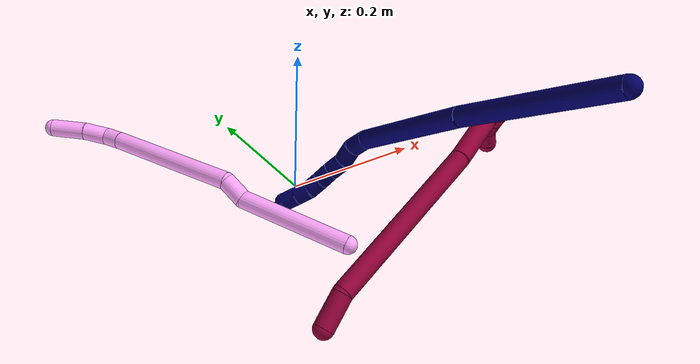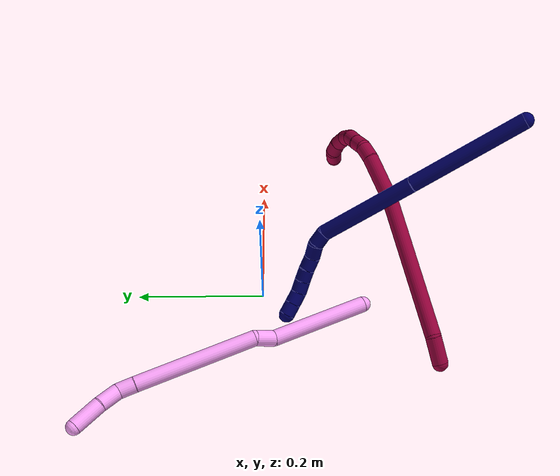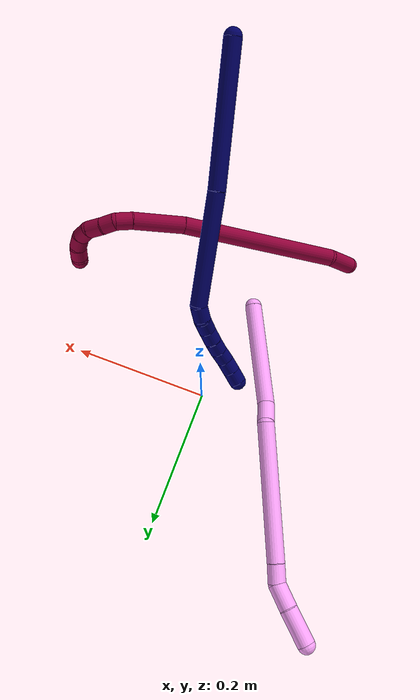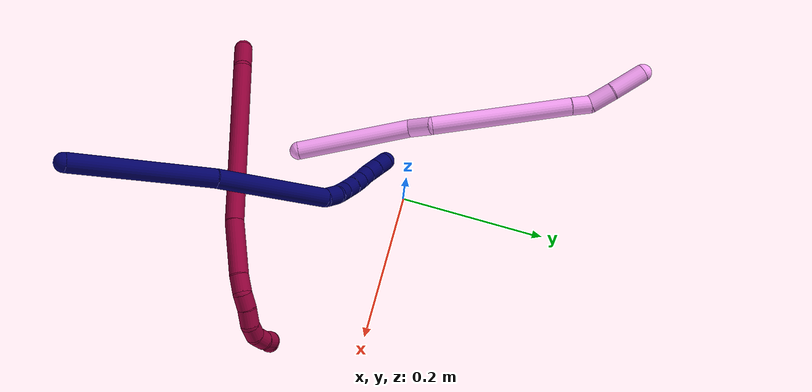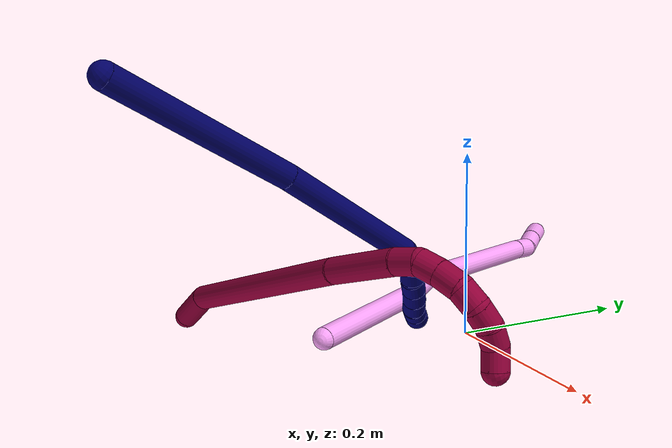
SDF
<sdf version="1.7">
 <world name="default">
  <model name="4">
   <static>0</static>
   <link name="4">
    <collision name="collision-cylinder-e_1_1_4">
     <pose>-0.019416 -0.017457 0.07468 0.229638 -0.247956 -0.028741</pose>
     <geometry><cylinder><radius>0.0125</radius><length>0.158227</length></cylinder></geometry>
     <surface>
      <friction><ode><mu>1.16</mu><mu2>1.16</mu2><slip1>0</slip1><slip2>0</slip2></ode></friction>
      <contact><ode><kp>1e+06</kp><kd>1</kd><max_vel>0</max_vel><min_depth>0.001</min_depth></ode></contact>
     </surface>
    </collision>
    <visual name="visual-cylinder-e_1_1_4">
     <pose>-0.019416 -0.017457 0.07468 0.229638 -0.247956 -0.028741</pose>
     <geometry><cylinder><radius>0.0125</radius><length>0.158227</length></cylinder></geometry>
     <material><ambient>1 0.65098 0.996078 1</ambient></material>
    </visual>
    <collision name="collision-cylinder-e_2_4_5">
     <pose>-0.049396 -0.036466 0.162558 0.116972 -0.671687 -0.040872</pose>
     <geometry><cylinder><radius>0.0125</radius><length>0.03395</length></cylinder></geometry>
     <surface>
      <friction><ode><mu>1.16</mu><mu2>1.16</mu2><slip1>0</slip1><slip2>0</slip2></ode></friction>
      <contact><ode><kp>1e+06</kp><kd>1</kd><max_vel>0</max_vel><min_depth>0.001</min_depth></ode></contact>
     </surface>
    </collision>
    <visual name="visual-cylinder-e_2_4_5">
     <pose>-0.049396 -0.036466 0.162558 0.116972 -0.671687 -0.040872</pose>
     <geometry><cylinder><radius>0.0125</radius><length>0.03395</length></cylinder></geometry>
     <material><ambient>1 0.65098 0.996078 1</ambient></material>
    </visual>
    <collision name="collision-cylinder-e_3_5_6">
     <pose>-0.079249 -0.067755 0.266727 0.315944 -0.198872 -0.031782</pose>
     <geometry><cylinder><radius>0.0125</radius><length>0.195269</length></cylinder></geometry>
     <surface>
      <friction><ode><mu>1.16</mu><mu2>1.16</mu2><slip1>0</slip1><slip2>0</slip2></ode></friction>
      <contact><ode><kp>1e+06</kp><kd>1</kd><max_vel>0</max_vel><min_depth>0.001</min_depth></ode></contact>
     </surface>
    </collision>
    <visual name="visual-cylinder-e_3_5_6">
     <pose>-0.079249 -0.067755 0.266727 0.315944 -0.198872 -0.031782</pose>
     <geometry><cylinder><radius>0.0125</radius><length>0.195269</length></cylinder></geometry>
     <material><ambient>1 0.65098 0.996078 1</ambient></material>
    </visual>
    <collision name="collision-cylinder-e_4_6_7">
     <pose>-0.100642 -0.10224 0.370263 0.361247 -0.155393 -0.028432</pose>
     <geometry><cylinder><radius>0.0125</radius><length>0.027186</length></cylinder></geometry>
     <surface>
      <friction><ode><mu>1.16</mu><mu2>1.16</mu2><slip1>0</slip1><slip2>0</slip2></ode></friction>
      <contact><ode><kp>1e+06</kp><kd>1</kd><max_vel>0</max_vel><min_depth>0.001</min_depth></ode></contact>
     </surface>
    </collision>
    <visual name="visual-cylinder-e_4_6_7">
     <pose>-0.100642 -0.10224 0.370263 0.361247 -0.155393 -0.028432</pose>
     <geometry><cylinder><radius>0.0125</radius><length>0.027186</length></cylinder></geometry>
     <material><ambient>1 0.65098 0.996078 1</ambient></material>
    </visual>
    <collision name="collision-cylinder-e_5_7_8">
     <pose>-0.104785 -0.105585 0.400171 -0.080595 -0.116664 0.004709</pose>
     <geometry><cylinder><radius>0.0125</radius><length>0.035043</length></cylinder></geometry>
     <surface>
      <friction><ode><mu>1.16</mu><mu2>1.16</mu2><slip1>0</slip1><slip2>0</slip2></ode></friction>
      <contact><ode><kp>1e+06</kp><kd>1</kd><max_vel>0</max_vel><min_depth>0.001</min_depth></ode></contact>
     </surface>
    </collision>
    <visual name="visual-cylinder-e_5_7_8">
     <pose>-0.104785 -0.105585 0.400171 -0.080595 -0.116664 0.004709</pose>
     <geometry><cylinder><radius>0.0125</radius><length>0.035043</length></cylinder></geometry>
     <material><ambient>1 0.65098 0.996078 1</ambient></material>
    </visual>
    <collision name="collision-cylinder-e_6_8_2">
     <pose>-0.106705 -0.103159 0.442658 -0.040741 0.004745 -9.7e-05</pose>
     <geometry><cylinder><radius>0.0125</radius><length>0.050325</length></cylinder></geometry>
     <surface>
      <friction><ode><mu>1.16</mu><mu2>1.16</mu2><slip1>0</slip1><slip2>0</slip2></ode></friction>
      <contact><ode><kp>1e+06</kp><kd>1</kd><max_vel>0</max_vel><min_depth>0.001</min_depth></ode></contact>
     </surface>
    </collision>
    <visual name="visual-cylinder-e_6_8_2">
     <pose>-0.106705 -0.103159 0.442658 -0.040741 0.004745 -9.7e-05</pose>
     <geometry><cylinder><radius>0.0125</radius><length>0.050325</length></cylinder></geometry>
     <material><ambient>1 0.65098 0.996078 1</ambient></material>
    </visual>
    <collision name="collision-sphere-2">
     <pose>-0.106586 -0.102134 0.4678 0 -0 0</pose>
     <geometry><sphere><radius>0.0125</radius></sphere></geometry>
     <surface>
      <friction><ode><mu>1.16</mu><mu2>1.16</mu2><slip1>0</slip1><slip2>0</slip2></ode></friction>
      <contact><ode><kp>1e+06</kp><kd>1</kd><max_vel>0</max_vel><min_depth>0.001</min_depth></ode></contact>
     </surface>
    </collision>
    <visual name="visual-sphere-2">
     <pose>-0.106586 -0.102134 0.4678 0 -0 0</pose>
     <geometry><sphere><radius>0.0125</radius></sphere></geometry>
     <material><ambient>1 0.65098 0.996078 1</ambient></material>
    </visual>
    <collision name="collision-sphere-4">
     <pose>-0.038832 -0.034915 0.149361 0 -0 0</pose>
     <geometry><sphere><radius>0.0125</radius></sphere></geometry>
     <surface>
      <friction><ode><mu>1.16</mu><mu2>1.16</mu2><slip1>0</slip1><slip2>0</slip2></ode></friction>
      <contact><ode><kp>1e+06</kp><kd>1</kd><max_vel>0</max_vel><min_depth>0.001</min_depth></ode></contact>
     </surface>
    </collision>
    <visual name="visual-sphere-4">
     <pose>-0.038832 -0.034915 0.149361 0 -0 0</pose>
     <geometry><sphere><radius>0.0125</radius></sphere></geometry>
     <material><ambient>1 0.65098 0.996078 1</ambient></material>
    </visual>
    <collision name="collision-sphere-1">
     <geometry><sphere><radius>0.0125</radius></sphere></geometry>
     <surface>
      <friction><ode><mu>1.16</mu><mu2>1.16</mu2><slip1>0</slip1><slip2>0</slip2></ode></friction>
      <contact><ode><kp>1e+06</kp><kd>1</kd><max_vel>0</max_vel><min_depth>0.001</min_depth></ode></contact>
     </surface>
    </collision>
    <visual name="visual-sphere-1">
     <geometry><sphere><radius>0.0125</radius></sphere></geometry>
     <material><ambient>1 0.65098 0.996078 1</ambient></material>
    </visual>
    <collision name="collision-sphere-8">
     <pose>-0.106824 -0.104184 0.417517 0 -0 0</pose>
     <geometry><sphere><radius>0.0125</radius></sphere></geometry>
     <surface>
      <friction><ode><mu>1.16</mu><mu2>1.16</mu2><slip1>0</slip1><slip2>0</slip2></ode></friction>
      <contact><ode><kp>1e+06</kp><kd>1</kd><max_vel>0</max_vel><min_depth>0.001</min_depth></ode></contact>
     </surface>
    </collision>
    <visual name="visual-sphere-8">
     <pose>-0.106824 -0.104184 0.417517 0 -0 0</pose>
     <geometry><sphere><radius>0.0125</radius></sphere></geometry>
     <material><ambient>1 0.65098 0.996078 1</ambient></material>
    </visual>
    <collision name="collision-sphere-5">
     <pose>-0.05996 -0.038016 0.175754 0 -0 0</pose>
     <geometry><sphere><radius>0.0125</radius></sphere></geometry>
     <surface>
      <friction><ode><mu>1.16</mu><mu2>1.16</mu2><slip1>0</slip1><slip2>0</slip2></ode></friction>
      <contact><ode><kp>1e+06</kp><kd>1</kd><max_vel>0</max_vel><min_depth>0.001</min_depth></ode></contact>
     </surface>
    </collision>
    <visual name="visual-sphere-5">
     <pose>-0.05996 -0.038016 0.175754 0 -0 0</pose>
     <geometry><sphere><radius>0.0125</radius></sphere></geometry>
     <material><ambient>1 0.65098 0.996078 1</ambient></material>
    </visual>
    <collision name="collision-sphere-6">
     <pose>-0.098538 -0.097493 0.3577 0 -0 0</pose>
     <geometry><sphere><radius>0.0125</radius></sphere></geometry>
     <surface>
      <friction><ode><mu>1.16</mu><mu2>1.16</mu2><slip1>0</slip1><slip2>0</slip2></ode></friction>
      <contact><ode><kp>1e+06</kp><kd>1</kd><max_vel>0</max_vel><min_depth>0.001</min_depth></ode></contact>
     </surface>
    </collision>
    <visual name="visual-sphere-6">
     <pose>-0.098538 -0.097493 0.3577 0 -0 0</pose>
     <geometry><sphere><radius>0.0125</radius></sphere></geometry>
     <material><ambient>1 0.65098 0.996078 1</ambient></material>
    </visual>
    <collision name="collision-sphere-7">
     <pose>-0.102745 -0.106986 0.382825 0 -0 0</pose>
     <geometry><sphere><radius>0.0125</radius></sphere></geometry>
     <surface>
      <friction><ode><mu>1.16</mu><mu2>1.16</mu2><slip1>0</slip1><slip2>0</slip2></ode></friction>
      <contact><ode><kp>1e+06</kp><kd>1</kd><max_vel>0</max_vel><min_depth>0.001</min_depth></ode></contact>
     </surface>
    </collision>
    <visual name="visual-sphere-7">
     <pose>-0.102745 -0.106986 0.382825 0 -0 0</pose>
     <geometry><sphere><radius>0.0125</radius></sphere></geometry>
     <material><ambient>1 0.65098 0.996078 1</ambient></material>
    </visual>
    <inertial>
     <pose>-0.064004 -0.057803 0.23157 0 -0 0</pose>
     <mass>0.5</mass>
     <inertia>
      <ixx>0.000928</ixx>
      <ixy>0</ixy>
      <ixz>0</ixz>
      <iyy>0.000913</iyy>
      <iyz>0</iyz>
      <izz>0.000513</izz>
     </inertia>
    </inertial>
   </link>
   <pose>-0.024673 -0.15877 0.011704 1.59423 0.991962 -2.33573</pose>
  </model>
  <model name="7">
   <static>0</static>
   <link name="7">
    <collision name="collision-cylinder-e_1_1_4">
     <pose>0.013327 0.022617 -0.092471 -2.90171 0.13909 -1.04815</pose>
     <geometry><cylinder><radius>0.0125</radius><length>0.19225</length></cylinder></geometry>
     <surface>
      <friction><ode><mu>1.16</mu><mu2>1.16</mu2><slip1>0</slip1><slip2>0</slip2></ode></friction>
      <contact><ode><kp>1e+06</kp><kd>1</kd><max_vel>0</max_vel><min_depth>0.001</min_depth></ode></contact>
     </surface>
    </collision>
    <visual name="visual-cylinder-e_1_1_4">
     <pose>0.013327 0.022617 -0.092471 -2.90171 0.13909 -1.04815</pose>
     <geometry><cylinder><radius>0.0125</radius><length>0.19225</length></cylinder></geometry>
     <material><ambient>0.003922 0 0.403922 1</ambient></material>
    </visual>
    <collision name="collision-cylinder-e_2_4_5">
     <pose>0.037401 0.057259 -0.263279 -2.98928 0.134785 -1.44843</pose>
     <geometry><cylinder><radius>0.0125</radius><length>0.15996</length></cylinder></geometry>
     <surface>
      <friction><ode><mu>1.16</mu><mu2>1.16</mu2><slip1>0</slip1><slip2>0</slip2></ode></friction>
      <contact><ode><kp>1e+06</kp><kd>1</kd><max_vel>0</max_vel><min_depth>0.001</min_depth></ode></contact>
     </surface>
    </collision>
    <visual name="visual-cylinder-e_2_4_5">
     <pose>0.037401 0.057259 -0.263279 -2.98928 0.134785 -1.44843</pose>
     <geometry><cylinder><radius>0.0125</radius><length>0.15996</length></cylinder></geometry>
     <material><ambient>0.003922 0 0.403922 1</ambient></material>
    </visual>
    <collision name="collision-cylinder-e_3_5_6">
     <pose>0.045091 0.071919 -0.352299 -2.89978 -0.271068 1.68599</pose>
     <geometry><cylinder><radius>0.0125</radius><length>0.022842</length></cylinder></geometry>
     <surface>
      <friction><ode><mu>1.16</mu><mu2>1.16</mu2><slip1>0</slip1><slip2>0</slip2></ode></friction>
      <contact><ode><kp>1e+06</kp><kd>1</kd><max_vel>0</max_vel><min_depth>0.001</min_depth></ode></contact>
     </surface>
    </collision>
    <visual name="visual-cylinder-e_3_5_6">
     <pose>0.045091 0.071919 -0.352299 -2.89978 -0.271068 1.68599</pose>
     <geometry><cylinder><radius>0.0125</radius><length>0.022842</length></cylinder></geometry>
     <material><ambient>0.003922 0 0.403922 1</ambient></material>
    </visual>
    <collision name="collision-cylinder-e_4_6_7">
     <pose>0.035606 0.074121 -0.372837 3.0976 -0.577489 -2.99375</pose>
     <geometry><cylinder><radius>0.0125</radius><length>0.023544</length></cylinder></geometry>
     <surface>
      <friction><ode><mu>1.16</mu><mu2>1.16</mu2><slip1>0</slip1><slip2>0</slip2></ode></friction>
      <contact><ode><kp>1e+06</kp><kd>1</kd><max_vel>0</max_vel><min_depth>0.001</min_depth></ode></contact>
     </surface>
    </collision>
    <visual name="visual-cylinder-e_4_6_7">
     <pose>0.035606 0.074121 -0.372837 3.0976 -0.577489 -2.99375</pose>
     <geometry><cylinder><radius>0.0125</radius><length>0.023544</length></cylinder></geometry>
     <material><ambient>0.003922 0 0.403922 1</ambient></material>
    </visual>
    <collision name="collision-cylinder-e_5_7_8">
     <pose>0.024284 0.076471 -0.391724 -2.84265 -0.477806 2.03403</pose>
     <geometry><cylinder><radius>0.0125</radius><length>0.02129</length></cylinder></geometry>
     <surface>
      <friction><ode><mu>1.16</mu><mu2>1.16</mu2><slip1>0</slip1><slip2>0</slip2></ode></friction>
      <contact><ode><kp>1e+06</kp><kd>1</kd><max_vel>0</max_vel><min_depth>0.001</min_depth></ode></contact>
     </surface>
    </collision>
    <visual name="visual-cylinder-e_5_7_8">
     <pose>0.024284 0.076471 -0.391724 -2.84265 -0.477806 2.03403</pose>
     <geometry><cylinder><radius>0.0125</radius><length>0.02129</length></cylinder></geometry>
     <material><ambient>0.003922 0 0.403922 1</ambient></material>
    </visual>
    <collision name="collision-cylinder-e_6_8_9">
     <pose>0.014194 0.081436 -0.409027 -2.8837 -0.545939 2.27409</pose>
     <geometry><cylinder><radius>0.0125</radius><length>0.020014</length></cylinder></geometry>
     <surface>
      <friction><ode><mu>1.16</mu><mu2>1.16</mu2><slip1>0</slip1><slip2>0</slip2></ode></friction>
      <contact><ode><kp>1e+06</kp><kd>1</kd><max_vel>0</max_vel><min_depth>0.001</min_depth></ode></contact>
     </surface>
    </collision>
    <visual name="visual-cylinder-e_6_8_9">
     <pose>0.014194 0.081436 -0.409027 -2.8837 -0.545939 2.27409</pose>
     <geometry><cylinder><radius>0.0125</radius><length>0.020014</length></cylinder></geometry>
     <material><ambient>0.003922 0 0.403922 1</ambient></material>
    </visual>
    <collision name="collision-cylinder-e_7_9_10">
     <pose>0.003483 0.086476 -0.425153 -2.79265 -0.583103 2.07946</pose>
     <geometry><cylinder><radius>0.0125</radius><length>0.02003</length></cylinder></geometry>
     <surface>
      <friction><ode><mu>1.16</mu><mu2>1.16</mu2><slip1>0</slip1><slip2>0</slip2></ode></friction>
      <contact><ode><kp>1e+06</kp><kd>1</kd><max_vel>0</max_vel><min_depth>0.001</min_depth></ode></contact>
     </surface>
    </collision>
    <visual name="visual-cylinder-e_7_9_10">
     <pose>0.003483 0.086476 -0.425153 -2.79265 -0.583103 2.07946</pose>
     <geometry><cylinder><radius>0.0125</radius><length>0.02003</length></cylinder></geometry>
     <material><ambient>0.003922 0 0.403922 1</ambient></material>
    </visual>
    <collision name="collision-cylinder-e_8_10_11">
     <pose>-0.006125 0.093958 -0.440911 -2.61214 -0.420478 1.33374</pose>
     <geometry><cylinder><radius>0.0125</radius><length>0.020059</length></cylinder></geometry>
     <surface>
      <friction><ode><mu>1.16</mu><mu2>1.16</mu2><slip1>0</slip1><slip2>0</slip2></ode></friction>
      <contact><ode><kp>1e+06</kp><kd>1</kd><max_vel>0</max_vel><min_depth>0.001</min_depth></ode></contact>
     </surface>
    </collision>
    <visual name="visual-cylinder-e_8_10_11">
     <pose>-0.006125 0.093958 -0.440911 -2.61214 -0.420478 1.33374</pose>
     <geometry><cylinder><radius>0.0125</radius><length>0.020059</length></cylinder></geometry>
     <material><ambient>0.003922 0 0.403922 1</ambient></material>
    </visual>
    <collision name="collision-cylinder-e_9_11_2">
     <pose>-0.01416 0.103278 -0.456721 -2.60576 -0.404868 1.28401</pose>
     <geometry><cylinder><radius>0.0125</radius><length>0.020011</length></cylinder></geometry>
     <surface>
      <friction><ode><mu>1.16</mu><mu2>1.16</mu2><slip1>0</slip1><slip2>0</slip2></ode></friction>
      <contact><ode><kp>1e+06</kp><kd>1</kd><max_vel>0</max_vel><min_depth>0.001</min_depth></ode></contact>
     </surface>
    </collision>
    <visual name="visual-cylinder-e_9_11_2">
     <pose>-0.01416 0.103278 -0.456721 -2.60576 -0.404868 1.28401</pose>
     <geometry><cylinder><radius>0.0125</radius><length>0.020011</length></cylinder></geometry>
     <material><ambient>0.003922 0 0.403922 1</ambient></material>
    </visual>
    <collision name="collision-sphere-2">
     <pose>-0.018102 0.107973 -0.464629 0 -0 0</pose>
     <geometry><sphere><radius>0.0125</radius></sphere></geometry>
     <surface>
      <friction><ode><mu>1.16</mu><mu2>1.16</mu2><slip1>0</slip1><slip2>0</slip2></ode></friction>
      <contact><ode><kp>1e+06</kp><kd>1</kd><max_vel>0</max_vel><min_depth>0.001</min_depth></ode></contact>
     </surface>
    </collision>
    <visual name="visual-sphere-2">
     <pose>-0.018102 0.107973 -0.464629 0 -0 0</pose>
     <geometry><sphere><radius>0.0125</radius></sphere></geometry>
     <material><ambient>0.003922 0 0.403922 1</ambient></material>
    </visual>
    <collision name="collision-sphere-11">
     <pose>-0.010219 0.098583 -0.448814 0 -0 0</pose>
     <geometry><sphere><radius>0.0125</radius></sphere></geometry>
     <surface>
      <friction><ode><mu>1.16</mu><mu2>1.16</mu2><slip1>0</slip1><slip2>0</slip2></ode></friction>
      <contact><ode><kp>1e+06</kp><kd>1</kd><max_vel>0</max_vel><min_depth>0.001</min_depth></ode></contact>
     </surface>
    </collision>
    <visual name="visual-sphere-11">
     <pose>-0.010219 0.098583 -0.448814 0 -0 0</pose>
     <geometry><sphere><radius>0.0125</radius></sphere></geometry>
     <material><ambient>0.003922 0 0.403922 1</ambient></material>
    </visual>
    <collision name="collision-sphere-10">
     <pose>-0.002031 0.089334 -0.433009 0 -0 0</pose>
     <geometry><sphere><radius>0.0125</radius></sphere></geometry>
     <surface>
      <friction><ode><mu>1.16</mu><mu2>1.16</mu2><slip1>0</slip1><slip2>0</slip2></ode></friction>
      <contact><ode><kp>1e+06</kp><kd>1</kd><max_vel>0</max_vel><min_depth>0.001</min_depth></ode></contact>
     </surface>
    </collision>
    <visual name="visual-sphere-10">
     <pose>-0.002031 0.089334 -0.433009 0 -0 0</pose>
     <geometry><sphere><radius>0.0125</radius></sphere></geometry>
     <material><ambient>0.003922 0 0.403922 1</ambient></material>
    </visual>
    <collision name="collision-sphere-9">
     <pose>0.008998 0.083617 -0.417296 0 -0 0</pose>
     <geometry><sphere><radius>0.0125</radius></sphere></geometry>
     <surface>
      <friction><ode><mu>1.16</mu><mu2>1.16</mu2><slip1>0</slip1><slip2>0</slip2></ode></friction>
      <contact><ode><kp>1e+06</kp><kd>1</kd><max_vel>0</max_vel><min_depth>0.001</min_depth></ode></contact>
     </surface>
    </collision>
    <visual name="visual-sphere-9">
     <pose>0.008998 0.083617 -0.417296 0 -0 0</pose>
     <geometry><sphere><radius>0.0125</radius></sphere></geometry>
     <material><ambient>0.003922 0 0.403922 1</ambient></material>
    </visual>
    <collision name="collision-sphere-4">
     <pose>0.026654 0.045235 -0.184942 0 -0 0</pose>
     <geometry><sphere><radius>0.0125</radius></sphere></geometry>
     <surface>
      <friction><ode><mu>1.16</mu><mu2>1.16</mu2><slip1>0</slip1><slip2>0</slip2></ode></friction>
      <contact><ode><kp>1e+06</kp><kd>1</kd><max_vel>0</max_vel><min_depth>0.001</min_depth></ode></contact>
     </surface>
    </collision>
    <visual name="visual-sphere-4">
     <pose>0.026654 0.045235 -0.184942 0 -0 0</pose>
     <geometry><sphere><radius>0.0125</radius></sphere></geometry>
     <material><ambient>0.003922 0 0.403922 1</ambient></material>
    </visual>
    <collision name="collision-sphere-1">
     <geometry><sphere><radius>0.0125</radius></sphere></geometry>
     <surface>
      <friction><ode><mu>1.16</mu><mu2>1.16</mu2><slip1>0</slip1><slip2>0</slip2></ode></friction>
      <contact><ode><kp>1e+06</kp><kd>1</kd><max_vel>0</max_vel><min_depth>0.001</min_depth></ode></contact>
     </surface>
    </collision>
    <visual name="visual-sphere-1">
     <geometry><sphere><radius>0.0125</radius></sphere></geometry>
     <material><ambient>0.003922 0 0.403922 1</ambient></material>
    </visual>
    <collision name="collision-sphere-8">
     <pose>0.019389 0.079255 -0.400758 0 -0 0</pose>
     <geometry><sphere><radius>0.0125</radius></sphere></geometry>
     <surface>
      <friction><ode><mu>1.16</mu><mu2>1.16</mu2><slip1>0</slip1><slip2>0</slip2></ode></friction>
      <contact><ode><kp>1e+06</kp><kd>1</kd><max_vel>0</max_vel><min_depth>0.001</min_depth></ode></contact>
     </surface>
    </collision>
    <visual name="visual-sphere-8">
     <pose>0.019389 0.079255 -0.400758 0 -0 0</pose>
     <geometry><sphere><radius>0.0125</radius></sphere></geometry>
     <material><ambient>0.003922 0 0.403922 1</ambient></material>
    </visual>
    <collision name="collision-sphere-5">
     <pose>0.048149 0.069284 -0.341616 0 -0 0</pose>
     <geometry><sphere><radius>0.0125</radius></sphere></geometry>
     <surface>
      <friction><ode><mu>1.16</mu><mu2>1.16</mu2><slip1>0</slip1><slip2>0</slip2></ode></friction>
      <contact><ode><kp>1e+06</kp><kd>1</kd><max_vel>0</max_vel><min_depth>0.001</min_depth></ode></contact>
     </surface>
    </collision>
    <visual name="visual-sphere-5">
     <pose>0.048149 0.069284 -0.341616 0 -0 0</pose>
     <geometry><sphere><radius>0.0125</radius></sphere></geometry>
     <material><ambient>0.003922 0 0.403922 1</ambient></material>
    </visual>
    <collision name="collision-sphere-6">
     <pose>0.042033 0.074554 -0.362983 0 -0 0</pose>
     <geometry><sphere><radius>0.0125</radius></sphere></geometry>
     <surface>
      <friction><ode><mu>1.16</mu><mu2>1.16</mu2><slip1>0</slip1><slip2>0</slip2></ode></friction>
      <contact><ode><kp>1e+06</kp><kd>1</kd><max_vel>0</max_vel><min_depth>0.001</min_depth></ode></contact>
     </surface>
    </collision>
    <visual name="visual-sphere-6">
     <pose>0.042033 0.074554 -0.362983 0 -0 0</pose>
     <geometry><sphere><radius>0.0125</radius></sphere></geometry>
     <material><ambient>0.003922 0 0.403922 1</ambient></material>
    </visual>
    <collision name="collision-sphere-7">
     <pose>0.029179 0.073687 -0.38269 0 -0 0</pose>
     <geometry><sphere><radius>0.0125</radius></sphere></geometry>
     <surface>
      <friction><ode><mu>1.16</mu><mu2>1.16</mu2><slip1>0</slip1><slip2>0</slip2></ode></friction>
      <contact><ode><kp>1e+06</kp><kd>1</kd><max_vel>0</max_vel><min_depth>0.001</min_depth></ode></contact>
     </surface>
    </collision>
    <visual name="visual-sphere-7">
     <pose>0.029179 0.073687 -0.38269 0 -0 0</pose>
     <geometry><sphere><radius>0.0125</radius></sphere></geometry>
     <material><ambient>0.003922 0 0.403922 1</ambient></material>
    </visual>
    <inertial>
     <pose>0.021755 0.051673 -0.239485 0 -0 0</pose>
     <mass>0.5</mass>
     <inertia>
      <ixx>-0.000515</ixx>
      <ixy>0</ixy>
      <ixz>0</ixz>
      <iyy>-0.001144</iyy>
      <iyz>0</iyz>
      <izz>-0.000357</izz>
     </inertia>
    </inertial>
   </link>
   <pose>0.104913 -0.390407 0.297117 0.605071 -0.531632 0.791813</pose>
  </model>
  <model name="8">
   <static>0</static>
   <link name="8">
    <collision name="collision-cylinder-e_1_1_4">
     <pose>0.013585 0.009843 -0.013555 -2.51353 0.681383 -1.6583</pose>
     <geometry><cylinder><radius>0.0125</radius><length>0.043135</length></cylinder></geometry>
     <surface>
      <friction><ode><mu>1.16</mu><mu2>1.16</mu2><slip1>0</slip1><slip2>0</slip2></ode></friction>
      <contact><ode><kp>1e+06</kp><kd>1</kd><max_vel>0</max_vel><min_depth>0.001</min_depth></ode></contact>
     </surface>
    </collision>
    <visual name="visual-cylinder-e_1_1_4">
     <pose>0.013585 0.009843 -0.013555 -2.51353 0.681383 -1.6583</pose>
     <geometry><cylinder><radius>0.0125</radius><length>0.043135</length></cylinder></geometry>
     <material><ambient>0.584314 0 0.227451 1</ambient></material>
    </visual>
    <collision name="collision-cylinder-e_2_4_5">
     <pose>0.121946 0.033672 -0.093431 -2.93375 0.949974 -2.7414</pose>
     <geometry><cylinder><radius>0.0125</radius><length>0.233039</length></cylinder></geometry>
     <surface>
      <friction><ode><mu>1.16</mu><mu2>1.16</mu2><slip1>0</slip1><slip2>0</slip2></ode></friction>
      <contact><ode><kp>1e+06</kp><kd>1</kd><max_vel>0</max_vel><min_depth>0.001</min_depth></ode></contact>
     </surface>
    </collision>
    <visual name="visual-cylinder-e_2_4_5">
     <pose>0.121946 0.033672 -0.093431 -2.93375 0.949974 -2.7414</pose>
     <geometry><cylinder><radius>0.0125</radius><length>0.233039</length></cylinder></geometry>
     <material><ambient>0.584314 0 0.227451 1</ambient></material>
    </visual>
    <collision name="collision-cylinder-e_3_5_6">
     <pose>0.245087 0.049368 -0.184321 -3.07212 0.855768 -2.98948</pose>
     <geometry><cylinder><radius>0.0125</radius><length>0.075126</length></cylinder></geometry>
     <surface>
      <friction><ode><mu>1.16</mu><mu2>1.16</mu2><slip1>0</slip1><slip2>0</slip2></ode></friction>
      <contact><ode><kp>1e+06</kp><kd>1</kd><max_vel>0</max_vel><min_depth>0.001</min_depth></ode></contact>
     </surface>
    </collision>
    <visual name="visual-cylinder-e_3_5_6">
     <pose>0.245087 0.049368 -0.184321 -3.07212 0.855768 -2.98948</pose>
     <geometry><cylinder><radius>0.0125</radius><length>0.075126</length></cylinder></geometry>
     <material><ambient>0.584314 0 0.227451 1</ambient></material>
    </visual>
    <collision name="collision-cylinder-e_4_6_7">
     <pose>0.282045 0.049807 -0.217067 2.98753 0.804332 2.78257</pose>
     <geometry><cylinder><radius>0.0125</radius><length>0.023864</length></cylinder></geometry>
     <surface>
      <friction><ode><mu>1.16</mu><mu2>1.16</mu2><slip1>0</slip1><slip2>0</slip2></ode></friction>
      <contact><ode><kp>1e+06</kp><kd>1</kd><max_vel>0</max_vel><min_depth>0.001</min_depth></ode></contact>
     </surface>
    </collision>
    <visual name="visual-cylinder-e_4_6_7">
     <pose>0.282045 0.049807 -0.217067 2.98753 0.804332 2.78257</pose>
     <geometry><cylinder><radius>0.0125</radius><length>0.023864</length></cylinder></geometry>
     <material><ambient>0.584314 0 0.227451 1</ambient></material>
    </visual>
    <collision name="collision-cylinder-e_5_7_8">
     <pose>0.297265 0.042885 -0.23081 2.34843 0.695811 1.42743</pose>
     <geometry><cylinder><radius>0.0125</radius><length>0.020667</length></cylinder></geometry>
     <surface>
      <friction><ode><mu>1.16</mu><mu2>1.16</mu2><slip1>0</slip1><slip2>0</slip2></ode></friction>
      <contact><ode><kp>1e+06</kp><kd>1</kd><max_vel>0</max_vel><min_depth>0.001</min_depth></ode></contact>
     </surface>
    </collision>
    <visual name="visual-cylinder-e_5_7_8">
     <pose>0.297265 0.042885 -0.23081 2.34843 0.695811 1.42743</pose>
     <geometry><cylinder><radius>0.0125</radius><length>0.020667</length></cylinder></geometry>
     <material><ambient>0.584314 0 0.227451 1</ambient></material>
    </visual>
    <collision name="collision-cylinder-e_6_8_9">
     <pose>0.31199 0.030466 -0.241271 2.19712 0.77013 1.34151</pose>
     <geometry><cylinder><radius>0.0125</radius><length>0.023273</length></cylinder></geometry>
     <surface>
      <friction><ode><mu>1.16</mu><mu2>1.16</mu2><slip1>0</slip1><slip2>0</slip2></ode></friction>
      <contact><ode><kp>1e+06</kp><kd>1</kd><max_vel>0</max_vel><min_depth>0.001</min_depth></ode></contact>
     </surface>
    </collision>
    <visual name="visual-cylinder-e_6_8_9">
     <pose>0.31199 0.030466 -0.241271 2.19712 0.77013 1.34151</pose>
     <geometry><cylinder><radius>0.0125</radius><length>0.023273</length></cylinder></geometry>
     <material><ambient>0.584314 0 0.227451 1</ambient></material>
    </visual>
    <collision name="collision-cylinder-e_7_9_10">
     <pose>0.324237 0.015009 -0.249056 1.89179 0.425031 0.581317</pose>
     <geometry><cylinder><radius>0.0125</radius><length>0.020102</length></cylinder></geometry>
     <surface>
      <friction><ode><mu>1.16</mu><mu2>1.16</mu2><slip1>0</slip1><slip2>0</slip2></ode></friction>
      <contact><ode><kp>1e+06</kp><kd>1</kd><max_vel>0</max_vel><min_depth>0.001</min_depth></ode></contact>
     </surface>
    </collision>
    <visual name="visual-cylinder-e_7_9_10">
     <pose>0.324237 0.015009 -0.249056 1.89179 0.425031 0.581317</pose>
     <geometry><cylinder><radius>0.0125</radius><length>0.020102</length></cylinder></geometry>
     <material><ambient>0.584314 0 0.227451 1</ambient></material>
    </visual>
    <collision name="collision-cylinder-e_8_10_11">
     <pose>0.328343 -0.00355 -0.254299 1.80493 -0.003791 -0.004802</pose>
     <geometry><cylinder><radius>0.0125</radius><length>0.020295</length></cylinder></geometry>
     <surface>
      <friction><ode><mu>1.16</mu><mu2>1.16</mu2><slip1>0</slip1><slip2>0</slip2></ode></friction>
      <contact><ode><kp>1e+06</kp><kd>1</kd><max_vel>0</max_vel><min_depth>0.001</min_depth></ode></contact>
     </surface>
    </collision>
    <visual name="visual-cylinder-e_8_10_11">
     <pose>0.328343 -0.00355 -0.254299 1.80493 -0.003791 -0.004802</pose>
     <geometry><cylinder><radius>0.0125</radius><length>0.020295</length></cylinder></geometry>
     <material><ambient>0.584314 0 0.227451 1</ambient></material>
    </visual>
    <collision name="collision-cylinder-e_9_11_12">
     <pose>0.326527 -0.023302 -0.256585 1.56388 -0.177961 -0.176741</pose>
     <geometry><cylinder><radius>0.0125</radius><length>0.02008</length></cylinder></geometry>
     <surface>
      <friction><ode><mu>1.16</mu><mu2>1.16</mu2><slip1>0</slip1><slip2>0</slip2></ode></friction>
      <contact><ode><kp>1e+06</kp><kd>1</kd><max_vel>0</max_vel><min_depth>0.001</min_depth></ode></contact>
     </surface>
    </collision>
    <visual name="visual-cylinder-e_9_11_12">
     <pose>0.326527 -0.023302 -0.256585 1.56388 -0.177961 -0.176741</pose>
     <geometry><cylinder><radius>0.0125</radius><length>0.02008</length></cylinder></geometry>
     <material><ambient>0.584314 0 0.227451 1</ambient></material>
    </visual>
    <collision name="collision-cylinder-e_10_12_2">
     <pose>0.326533 -0.042529 -0.252816 1.19377 0.175543 0.119459</pose>
     <geometry><cylinder><radius>0.0125</radius><length>0.020417</length></cylinder></geometry>
     <surface>
      <friction><ode><mu>1.16</mu><mu2>1.16</mu2><slip1>0</slip1><slip2>0</slip2></ode></friction>
      <contact><ode><kp>1e+06</kp><kd>1</kd><max_vel>0</max_vel><min_depth>0.001</min_depth></ode></contact>
     </surface>
    </collision>
    <visual name="visual-cylinder-e_10_12_2">
     <pose>0.326533 -0.042529 -0.252816 1.19377 0.175543 0.119459</pose>
     <geometry><cylinder><radius>0.0125</radius><length>0.020417</length></cylinder></geometry>
     <material><ambient>0.584314 0 0.227451 1</ambient></material>
    </visual>
    <collision name="collision-sphere-2">
     <pose>0.328316 -0.051874 -0.249116 0 -0 0</pose>
     <geometry><sphere><radius>0.0125</radius></sphere></geometry>
     <surface>
      <friction><ode><mu>1.16</mu><mu2>1.16</mu2><slip1>0</slip1><slip2>0</slip2></ode></friction>
      <contact><ode><kp>1e+06</kp><kd>1</kd><max_vel>0</max_vel><min_depth>0.001</min_depth></ode></contact>
     </surface>
    </collision>
    <visual name="visual-sphere-2">
     <pose>0.328316 -0.051874 -0.249116 0 -0 0</pose>
     <geometry><sphere><radius>0.0125</radius></sphere></geometry>
     <material><ambient>0.584314 0 0.227451 1</ambient></material>
    </visual>
    <collision name="collision-sphere-12">
     <pose>0.32475 -0.033183 -0.256517 0 -0 0</pose>
     <geometry><sphere><radius>0.0125</radius></sphere></geometry>
     <surface>
      <friction><ode><mu>1.16</mu><mu2>1.16</mu2><slip1>0</slip1><slip2>0</slip2></ode></friction>
      <contact><ode><kp>1e+06</kp><kd>1</kd><max_vel>0</max_vel><min_depth>0.001</min_depth></ode></contact>
     </surface>
    </collision>
    <visual name="visual-sphere-12">
     <pose>0.32475 -0.033183 -0.256517 0 -0 0</pose>
     <geometry><sphere><radius>0.0125</radius></sphere></geometry>
     <material><ambient>0.584314 0 0.227451 1</ambient></material>
    </visual>
    <collision name="collision-sphere-11">
     <pose>0.328304 -0.013421 -0.256654 0 -0 0</pose>
     <geometry><sphere><radius>0.0125</radius></sphere></geometry>
     <surface>
      <friction><ode><mu>1.16</mu><mu2>1.16</mu2><slip1>0</slip1><slip2>0</slip2></ode></friction>
      <contact><ode><kp>1e+06</kp><kd>1</kd><max_vel>0</max_vel><min_depth>0.001</min_depth></ode></contact>
     </surface>
    </collision>
    <visual name="visual-sphere-11">
     <pose>0.328304 -0.013421 -0.256654 0 -0 0</pose>
     <geometry><sphere><radius>0.0125</radius></sphere></geometry>
     <material><ambient>0.584314 0 0.227451 1</ambient></material>
    </visual>
    <collision name="collision-sphere-10">
     <pose>0.328381 0.00632 -0.251945 0 -0 0</pose>
     <geometry><sphere><radius>0.0125</radius></sphere></geometry>
     <surface>
      <friction><ode><mu>1.16</mu><mu2>1.16</mu2><slip1>0</slip1><slip2>0</slip2></ode></friction>
      <contact><ode><kp>1e+06</kp><kd>1</kd><max_vel>0</max_vel><min_depth>0.001</min_depth></ode></contact>
     </surface>
    </collision>
    <visual name="visual-sphere-10">
     <pose>0.328381 0.00632 -0.251945 0 -0 0</pose>
     <geometry><sphere><radius>0.0125</radius></sphere></geometry>
     <material><ambient>0.584314 0 0.227451 1</ambient></material>
    </visual>
    <collision name="collision-sphere-9">
     <pose>0.320092 0.023699 -0.246167 0 -0 0</pose>
     <geometry><sphere><radius>0.0125</radius></sphere></geometry>
     <surface>
      <friction><ode><mu>1.16</mu><mu2>1.16</mu2><slip1>0</slip1><slip2>0</slip2></ode></friction>
      <contact><ode><kp>1e+06</kp><kd>1</kd><max_vel>0</max_vel><min_depth>0.001</min_depth></ode></contact>
     </surface>
    </collision>
    <visual name="visual-sphere-9">
     <pose>0.320092 0.023699 -0.246167 0 -0 0</pose>
     <geometry><sphere><radius>0.0125</radius></sphere></geometry>
     <material><ambient>0.584314 0 0.227451 1</ambient></material>
    </visual>
    <collision name="collision-sphere-4">
     <pose>0.027169 0.019686 -0.02711 0 -0 0</pose>
     <geometry><sphere><radius>0.0125</radius></sphere></geometry>
     <surface>
      <friction><ode><mu>1.16</mu><mu2>1.16</mu2><slip1>0</slip1><slip2>0</slip2></ode></friction>
      <contact><ode><kp>1e+06</kp><kd>1</kd><max_vel>0</max_vel><min_depth>0.001</min_depth></ode></contact>
     </surface>
    </collision>
    <visual name="visual-sphere-4">
     <pose>0.027169 0.019686 -0.02711 0 -0 0</pose>
     <geometry><sphere><radius>0.0125</radius></sphere></geometry>
     <material><ambient>0.584314 0 0.227451 1</ambient></material>
    </visual>
    <collision name="collision-sphere-1">
     <geometry><sphere><radius>0.0125</radius></sphere></geometry>
     <surface>
      <friction><ode><mu>1.16</mu><mu2>1.16</mu2><slip1>0</slip1><slip2>0</slip2></ode></friction>
      <contact><ode><kp>1e+06</kp><kd>1</kd><max_vel>0</max_vel><min_depth>0.001</min_depth></ode></contact>
     </surface>
    </collision>
    <visual name="visual-sphere-1">
     <geometry><sphere><radius>0.0125</radius></sphere></geometry>
     <material><ambient>0.584314 0 0.227451 1</ambient></material>
    </visual>
    <collision name="collision-sphere-8">
     <pose>0.303889 0.037234 -0.236375 0 -0 0</pose>
     <geometry><sphere><radius>0.0125</radius></sphere></geometry>
     <surface>
      <friction><ode><mu>1.16</mu><mu2>1.16</mu2><slip1>0</slip1><slip2>0</slip2></ode></friction>
      <contact><ode><kp>1e+06</kp><kd>1</kd><max_vel>0</max_vel><min_depth>0.001</min_depth></ode></contact>
     </surface>
    </collision>
    <visual name="visual-sphere-8">
     <pose>0.303889 0.037234 -0.236375 0 -0 0</pose>
     <geometry><sphere><radius>0.0125</radius></sphere></geometry>
     <material><ambient>0.584314 0 0.227451 1</ambient></material>
    </visual>
    <collision name="collision-sphere-5">
     <pose>0.216724 0.047658 -0.159752 0 -0 0</pose>
     <geometry><sphere><radius>0.0125</radius></sphere></geometry>
     <surface>
      <friction><ode><mu>1.16</mu><mu2>1.16</mu2><slip1>0</slip1><slip2>0</slip2></ode></friction>
      <contact><ode><kp>1e+06</kp><kd>1</kd><max_vel>0</max_vel><min_depth>0.001</min_depth></ode></contact>
     </surface>
    </collision>
    <visual name="visual-sphere-5">
     <pose>0.216724 0.047658 -0.159752 0 -0 0</pose>
     <geometry><sphere><radius>0.0125</radius></sphere></geometry>
     <material><ambient>0.584314 0 0.227451 1</ambient></material>
    </visual>
    <collision name="collision-sphere-6">
     <pose>0.273449 0.051077 -0.208889 0 -0 0</pose>
     <geometry><sphere><radius>0.0125</radius></sphere></geometry>
     <surface>
      <friction><ode><mu>1.16</mu><mu2>1.16</mu2><slip1>0</slip1><slip2>0</slip2></ode></friction>
      <contact><ode><kp>1e+06</kp><kd>1</kd><max_vel>0</max_vel><min_depth>0.001</min_depth></ode></contact>
     </surface>
    </collision>
    <visual name="visual-sphere-6">
     <pose>0.273449 0.051077 -0.208889 0 -0 0</pose>
     <geometry><sphere><radius>0.0125</radius></sphere></geometry>
     <material><ambient>0.584314 0 0.227451 1</ambient></material>
    </visual>
    <collision name="collision-sphere-7">
     <pose>0.290641 0.048537 -0.225245 0 -0 0</pose>
     <geometry><sphere><radius>0.0125</radius></sphere></geometry>
     <surface>
      <friction><ode><mu>1.16</mu><mu2>1.16</mu2><slip1>0</slip1><slip2>0</slip2></ode></friction>
      <contact><ode><kp>1e+06</kp><kd>1</kd><max_vel>0</max_vel><min_depth>0.001</min_depth></ode></contact>
     </surface>
    </collision>
    <visual name="visual-sphere-7">
     <pose>0.290641 0.048537 -0.225245 0 -0 0</pose>
     <geometry><sphere><radius>0.0125</radius></sphere></geometry>
     <material><ambient>0.584314 0 0.227451 1</ambient></material>
    </visual>
    <inertial>
     <pose>0.187915 0.027315 -0.144505 0 -0 0</pose>
     <mass>0.5</mass>
     <inertia>
      <ixx>-0.000813</ixx>
      <ixy>0</ixy>
      <ixz>0</ixz>
      <iyy>0.000822</iyy>
      <iyz>0</iyz>
      <izz>-0.001049</izz>
     </inertia>
    </inertial>
   </link>
   <pose>-0.141223 -0.272551 0.021186 1.91258 -0.001316 -0.275304</pose>
  </model>
 </world>
</sdf>
